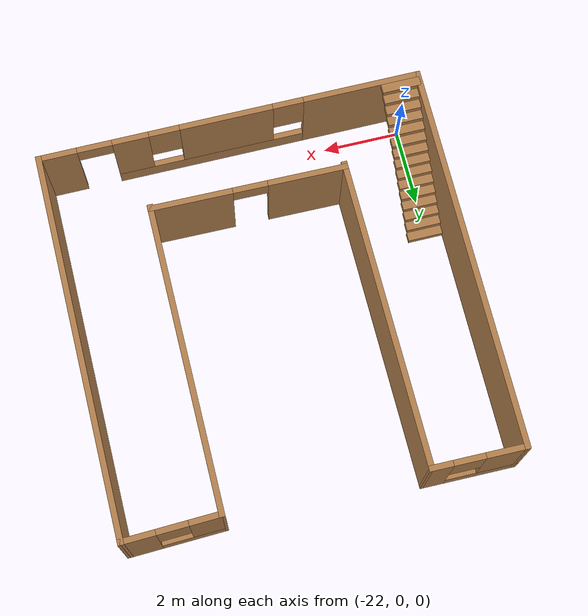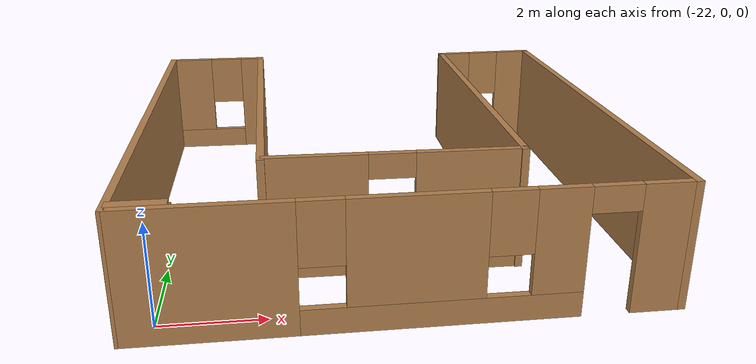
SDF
<?xml version='1.0'?>
<sdf version='1.6'>
  <model name='mybuilding'>
    <pose frame=''>-17.5786 4.43794 0 0 -0 0</pose>
    <link name='Stairs_0'>
      <visual name='Stairs_0_Visual_0'>
        <pose frame=''>-4.43073 -1.49974 0.083333 0 -0 0</pose>
        <geometry>
          <box>
            <size>1 0.233333 0.166667</size>
          </box>
        </geometry>
        <material>
          <script>
            <uri>file://media/materials/scripts/gazebo.material</uri>
            <name>Gazebo/Wood</name>
          </script>
          <ambient>1 1 1 1</ambient>
        </material>
        <meta>
          <layer>0</layer>
        </meta>
      </visual>
      <collision name='Stairs_0_Collision_0'>
        <geometry>
          <box>
            <size>1 0.233333 0.166667</size>
          </box>
        </geometry>
        <pose frame=''>-4.43073 -1.49974 0.083333 0 -0 0</pose>
      </collision>
      <visual name='Stairs_0_Visual_1'>
        <pose frame=''>-4.43073 -1.73307 0.25 0 -0 0</pose>
        <geometry>
          <box>
            <size>1 0.233333 0.166667</size>
          </box>
        </geometry>
        <material>
          <script>
            <uri>file://media/materials/scripts/gazebo.material</uri>
            <name>Gazebo/Wood</name>
          </script>
          <ambient>1 1 1 1</ambient>
        </material>
        <meta>
          <layer>0</layer>
        </meta>
      </visual>
      <collision name='Stairs_0_Collision_1'>
        <geometry>
          <box>
            <size>1 0.233333 0.166667</size>
          </box>
        </geometry>
        <pose frame=''>-4.43073 -1.73307 0.25 0 -0 0</pose>
      </collision>
      <visual name='Stairs_0_Visual_2'>
        <pose frame=''>-4.43073 -1.9664 0.416667 0 -0 0</pose>
        <geometry>
          <box>
            <size>1 0.233333 0.166667</size>
          </box>
        </geometry>
        <material>
          <script>
            <uri>file://media/materials/scripts/gazebo.material</uri>
            <name>Gazebo/Wood</name>
          </script>
          <ambient>1 1 1 1</ambient>
        </material>
        <meta>
          <layer>0</layer>
        </meta>
      </visual>
      <collision name='Stairs_0_Collision_2'>
        <geometry>
          <box>
            <size>1 0.233333 0.166667</size>
          </box>
        </geometry>
        <pose frame=''>-4.43073 -1.9664 0.416667 0 -0 0</pose>
      </collision>
      <visual name='Stairs_0_Visual_3'>
        <pose frame=''>-4.43073 -2.19974 0.583333 0 -0 0</pose>
        <geometry>
          <box>
            <size>1 0.233333 0.166667</size>
          </box>
        </geometry>
        <material>
          <script>
            <uri>file://media/materials/scripts/gazebo.material</uri>
            <name>Gazebo/Wood</name>
          </script>
          <ambient>1 1 1 1</ambient>
        </material>
        <meta>
          <layer>0</layer>
        </meta>
      </visual>
      <collision name='Stairs_0_Collision_3'>
        <geometry>
          <box>
            <size>1 0.233333 0.166667</size>
          </box>
        </geometry>
        <pose frame=''>-4.43073 -2.19974 0.583333 0 -0 0</pose>
      </collision>
      <visual name='Stairs_0_Visual_4'>
        <pose frame=''>-4.43073 -2.43307 0.75 0 -0 0</pose>
        <geometry>
          <box>
            <size>1 0.233333 0.166667</size>
          </box>
        </geometry>
        <material>
          <script>
            <uri>file://media/materials/scripts/gazebo.material</uri>
            <name>Gazebo/Wood</name>
          </script>
          <ambient>1 1 1 1</ambient>
        </material>
        <meta>
          <layer>0</layer>
        </meta>
      </visual>
      <collision name='Stairs_0_Collision_4'>
        <geometry>
          <box>
            <size>1 0.233333 0.166667</size>
          </box>
        </geometry>
        <pose frame=''>-4.43073 -2.43307 0.75 0 -0 0</pose>
      </collision>
      <visual name='Stairs_0_Visual_5'>
        <pose frame=''>-4.43073 -2.6664 0.916667 0 -0 0</pose>
        <geometry>
          <box>
            <size>1 0.233333 0.166667</size>
          </box>
        </geometry>
        <material>
          <script>
            <uri>file://media/materials/scripts/gazebo.material</uri>
            <name>Gazebo/Wood</name>
          </script>
          <ambient>1 1 1 1</ambient>
        </material>
        <meta>
          <layer>0</layer>
        </meta>
      </visual>
      <collision name='Stairs_0_Collision_5'>
        <geometry>
          <box>
            <size>1 0.233333 0.166667</size>
          </box>
        </geometry>
        <pose frame=''>-4.43073 -2.6664 0.916667 0 -0 0</pose>
      </collision>
      <visual name='Stairs_0_Visual_6'>
        <pose frame=''>-4.43073 -2.89974 1.08333 0 -0 0</pose>
        <geometry>
          <box>
            <size>1 0.233333 0.166667</size>
          </box>
        </geometry>
        <material>
          <script>
            <uri>file://media/materials/scripts/gazebo.material</uri>
            <name>Gazebo/Wood</name>
          </script>
          <ambient>1 1 1 1</ambient>
        </material>
        <meta>
          <layer>0</layer>
        </meta>
      </visual>
      <collision name='Stairs_0_Collision_6'>
        <geometry>
          <box>
            <size>1 0.233333 0.166667</size>
          </box>
        </geometry>
        <pose frame=''>-4.43073 -2.89974 1.08333 0 -0 0</pose>
      </collision>
      <visual name='Stairs_0_Visual_7'>
        <pose frame=''>-4.43073 -3.13307 1.25 0 -0 0</pose>
        <geometry>
          <box>
            <size>1 0.233333 0.166667</size>
          </box>
        </geometry>
        <material>
          <script>
            <uri>file://media/materials/scripts/gazebo.material</uri>
            <name>Gazebo/Wood</name>
          </script>
          <ambient>1 1 1 1</ambient>
        </material>
        <meta>
          <layer>0</layer>
        </meta>
      </visual>
      <collision name='Stairs_0_Collision_7'>
        <geometry>
          <box>
            <size>1 0.233333 0.166667</size>
          </box>
        </geometry>
        <pose frame=''>-4.43073 -3.13307 1.25 0 -0 0</pose>
      </collision>
      <visual name='Stairs_0_Visual_8'>
        <pose frame=''>-4.43073 -3.3664 1.41667 0 -0 0</pose>
        <geometry>
          <box>
            <size>1 0.233333 0.166667</size>
          </box>
        </geometry>
        <material>
          <script>
            <uri>file://media/materials/scripts/gazebo.material</uri>
            <name>Gazebo/Wood</name>
          </script>
          <ambient>1 1 1 1</ambient>
        </material>
        <meta>
          <layer>0</layer>
        </meta>
      </visual>
      <collision name='Stairs_0_Collision_8'>
        <geometry>
          <box>
            <size>1 0.233333 0.166667</size>
          </box>
        </geometry>
        <pose frame=''>-4.43073 -3.3664 1.41667 0 -0 0</pose>
      </collision>
      <visual name='Stairs_0_Visual_9'>
        <pose frame=''>-4.43073 -3.59974 1.58333 0 -0 0</pose>
        <geometry>
          <box>
            <size>1 0.233333 0.166667</size>
          </box>
        </geometry>
        <material>
          <script>
            <uri>file://media/materials/scripts/gazebo.material</uri>
            <name>Gazebo/Wood</name>
          </script>
          <ambient>1 1 1 1</ambient>
        </material>
        <meta>
          <layer>0</layer>
        </meta>
      </visual>
      <collision name='Stairs_0_Collision_9'>
        <geometry>
          <box>
            <size>1 0.233333 0.166667</size>
          </box>
        </geometry>
        <pose frame=''>-4.43073 -3.59974 1.58333 0 -0 0</pose>
      </collision>
      <visual name='Stairs_0_Visual_10'>
        <pose frame=''>-4.43073 -3.83307 1.75 0 -0 0</pose>
        <geometry>
          <box>
            <size>1 0.233333 0.166667</size>
          </box>
        </geometry>
        <material>
          <script>
            <uri>file://media/materials/scripts/gazebo.material</uri>
            <name>Gazebo/Wood</name>
          </script>
          <ambient>1 1 1 1</ambient>
        </material>
        <meta>
          <layer>0</layer>
        </meta>
      </visual>
      <collision name='Stairs_0_Collision_10'>
        <geometry>
          <box>
            <size>1 0.233333 0.166667</size>
          </box>
        </geometry>
        <pose frame=''>-4.43073 -3.83307 1.75 0 -0 0</pose>
      </collision>
      <visual name='Stairs_0_Visual_11'>
        <pose frame=''>-4.43073 -4.0664 1.91667 0 -0 0</pose>
        <geometry>
          <box>
            <size>1 0.233333 0.166667</size>
          </box>
        </geometry>
        <material>
          <script>
            <uri>file://media/materials/scripts/gazebo.material</uri>
            <name>Gazebo/Wood</name>
          </script>
          <ambient>1 1 1 1</ambient>
        </material>
        <meta>
          <layer>0</layer>
        </meta>
      </visual>
      <collision name='Stairs_0_Collision_11'>
        <geometry>
          <box>
            <size>1 0.233333 0.166667</size>
          </box>
        </geometry>
        <pose frame=''>-4.43073 -4.0664 1.91667 0 -0 0</pose>
      </collision>
      <visual name='Stairs_0_Visual_12'>
        <pose frame=''>-4.43073 -4.29974 2.08333 0 -0 0</pose>
        <geometry>
          <box>
            <size>1 0.233333 0.166667</size>
          </box>
        </geometry>
        <material>
          <script>
            <uri>file://media/materials/scripts/gazebo.material</uri>
            <name>Gazebo/Wood</name>
          </script>
          <ambient>1 1 1 1</ambient>
        </material>
        <meta>
          <layer>0</layer>
        </meta>
      </visual>
      <collision name='Stairs_0_Collision_12'>
        <geometry>
          <box>
            <size>1 0.233333 0.166667</size>
          </box>
        </geometry>
        <pose frame=''>-4.43073 -4.29974 2.08333 0 -0 0</pose>
      </collision>
      <visual name='Stairs_0_Visual_13'>
        <pose frame=''>-4.43073 -4.53307 2.25 0 -0 0</pose>
        <geometry>
          <box>
            <size>1 0.233333 0.166667</size>
          </box>
        </geometry>
        <material>
          <script>
            <uri>file://media/materials/scripts/gazebo.material</uri>
            <name>Gazebo/Wood</name>
          </script>
          <ambient>1 1 1 1</ambient>
        </material>
        <meta>
          <layer>0</layer>
        </meta>
      </visual>
      <collision name='Stairs_0_Collision_13'>
        <geometry>
          <box>
            <size>1 0.233333 0.166667</size>
          </box>
        </geometry>
        <pose frame=''>-4.43073 -4.53307 2.25 0 -0 0</pose>
      </collision>
      <visual name='Stairs_0_Visual_14'>
        <pose frame=''>-4.43073 -4.7664 2.41667 0 -0 0</pose>
        <geometry>
          <box>
            <size>1 0.233333 0.166667</size>
          </box>
        </geometry>
        <material>
          <script>
            <uri>file://media/materials/scripts/gazebo.material</uri>
            <name>Gazebo/Wood</name>
          </script>
          <ambient>1 1 1 1</ambient>
        </material>
        <meta>
          <layer>0</layer>
        </meta>
      </visual>
      <collision name='Stairs_0_Collision_14'>
        <geometry>
          <box>
            <size>1 0.233333 0.166667</size>
          </box>
        </geometry>
        <pose frame=''>-4.43073 -4.7664 2.41667 0 -0 0</pose>
      </collision>
    </link>
    <link name='Wall_1'>
      <collision name='Wall_1_Collision'>
        <geometry>
          <box>
            <size>10.061 0.15 2.5</size>
          </box>
        </geometry>
        <pose frame=''>0 0 1.25 0 -0 0</pose>
      </collision>
      <visual name='Wall_1_Visual'>
        <pose frame=''>0 0 1.25 0 -0 0</pose>
        <geometry>
          <box>
            <size>10.061 0.15 2.5</size>
          </box>
        </geometry>
        <material>
          <script>
            <uri>file://media/materials/scripts/gazebo.material</uri>
            <name>Gazebo/Wood</name>
          </script>
          <ambient>1 1 1 1</ambient>
        </material>
        <meta>
          <layer>0</layer>
        </meta>
      </visual>
      <pose frame=''>-4.9259 -0.000259 0 0 0 -1.56867</pose>
    </link>
    <link name='Wall_2'>
      <pose frame=''>0.009628 -4.95577 0 0 -0 0</pose>
      <visual name='Wall_2_Visual_0'>
        <pose frame=''>-3.46014 0 1.25 0 -0 0</pose>
        <geometry>
          <box>
            <size>3.07972 0.15 2.5</size>
          </box>
        </geometry>
        <material>
          <script>
            <uri>file://media/materials/scripts/gazebo.material</uri>
            <name>Gazebo/Wood</name>
          </script>
          <ambient>1 1 1 1</ambient>
        </material>
        <meta>
          <layer>0</layer>
        </meta>
      </visual>
      <collision name='Wall_2_Collision_0'>
        <geometry>
          <box>
            <size>3.07972 0.15 2.5</size>
          </box>
        </geometry>
        <pose frame=''>-3.46014 0 1.25 0 -0 0</pose>
      </collision>
      <visual name='Wall_2_Visual_1'>
        <pose frame=''>4.47431 0 1.25 0 -0 0</pose>
        <geometry>
          <box>
            <size>1.05139 0.15 2.5</size>
          </box>
        </geometry>
        <material>
          <script>
            <uri>file://media/materials/scripts/gazebo.material</uri>
            <name>Gazebo/Wood</name>
          </script>
          <ambient>1 1 1 1</ambient>
        </material>
        <meta>
          <layer>0</layer>
        </meta>
      </visual>
      <collision name='Wall_2_Collision_1'>
        <geometry>
          <box>
            <size>1.05139 0.15 2.5</size>
          </box>
        </geometry>
        <pose frame=''>4.47431 0 1.25 0 -0 0</pose>
      </collision>
      <visual name='Wall_2_Visual_2'>
        <pose frame=''>0.564165 0 0.25 0 -0 0</pose>
        <geometry>
          <box>
            <size>4.96889 0.15 0.5</size>
          </box>
        </geometry>
        <material>
          <script>
            <uri>file://media/materials/scripts/gazebo.material</uri>
            <name>Gazebo/Wood</name>
          </script>
          <ambient>1 1 1 1</ambient>
        </material>
        <meta>
          <layer>0</layer>
        </meta>
      </visual>
      <collision name='Wall_2_Collision_2'>
        <geometry>
          <box>
            <size>4.96889 0.15 0.5</size>
          </box>
        </geometry>
        <pose frame=''>0.564165 0 0.25 0 -0 0</pose>
      </collision>
      <visual name='Wall_2_Visual_3'>
        <pose frame=''>0.091849 0 1.5 0 -0 0</pose>
        <geometry>
          <box>
            <size>2.42426 0.15 2</size>
          </box>
        </geometry>
        <material>
          <script>
            <uri>file://media/materials/scripts/gazebo.material</uri>
            <name>Gazebo/Wood</name>
          </script>
          <ambient>1 1 1 1</ambient>
        </material>
        <meta>
          <layer>0</layer>
        </meta>
      </visual>
      <collision name='Wall_2_Collision_3'>
        <geometry>
          <box>
            <size>2.42426 0.15 2</size>
          </box>
        </geometry>
        <pose frame=''>0.091849 0 1.5 0 -0 0</pose>
      </collision>
      <visual name='Wall_2_Visual_4'>
        <pose frame=''>2.57629 0 1.5 0 -0 0</pose>
        <geometry>
          <box>
            <size>0.944633 0.15 2</size>
          </box>
        </geometry>
        <material>
          <script>
            <uri>file://media/materials/scripts/gazebo.material</uri>
            <name>Gazebo/Wood</name>
          </script>
          <ambient>1 1 1 1</ambient>
        </material>
        <meta>
          <layer>0</layer>
        </meta>
      </visual>
      <collision name='Wall_2_Collision_4'>
        <geometry>
          <box>
            <size>0.944633 0.15 2</size>
          </box>
        </geometry>
        <pose frame=''>2.57629 0 1.5 0 -0 0</pose>
      </collision>
      <visual name='Wall_2_Visual_5'>
        <pose frame=''>-1.52028 0 1.9 0 -0 0</pose>
        <geometry>
          <box>
            <size>0.8 0.15 1.2</size>
          </box>
        </geometry>
        <material>
          <script>
            <uri>file://media/materials/scripts/gazebo.material</uri>
            <name>Gazebo/Wood</name>
          </script>
          <ambient>1 1 1 1</ambient>
        </material>
        <meta>
          <layer>0</layer>
        </meta>
      </visual>
      <collision name='Wall_2_Collision_5'>
        <geometry>
          <box>
            <size>0.8 0.15 1.2</size>
          </box>
        </geometry>
        <pose frame=''>-1.52028 0 1.9 0 -0 0</pose>
      </collision>
      <visual name='Wall_2_Visual_6'>
        <pose frame=''>1.70398 0 1.9 0 -0 0</pose>
        <geometry>
          <box>
            <size>0.8 0.15 1.2</size>
          </box>
        </geometry>
        <material>
          <script>
            <uri>file://media/materials/scripts/gazebo.material</uri>
            <name>Gazebo/Wood</name>
          </script>
          <ambient>1 1 1 1</ambient>
        </material>
        <meta>
          <layer>0</layer>
        </meta>
      </visual>
      <collision name='Wall_2_Collision_6'>
        <geometry>
          <box>
            <size>0.8 0.15 1.2</size>
          </box>
        </geometry>
        <pose frame=''>1.70398 0 1.9 0 -0 0</pose>
      </collision>
      <visual name='Wall_2_Visual_7'>
        <pose frame=''>3.49861 0 2.25 0 -0 0</pose>
        <geometry>
          <box>
            <size>0.9 0.15 0.5</size>
          </box>
        </geometry>
        <material>
          <script>
            <uri>file://media/materials/scripts/gazebo.material</uri>
            <name>Gazebo/Wood</name>
          </script>
          <ambient>1 1 1 1</ambient>
        </material>
        <meta>
          <layer>0</layer>
        </meta>
      </visual>
      <collision name='Wall_2_Collision_7'>
        <geometry>
          <box>
            <size>0.9 0.15 0.5</size>
          </box>
        </geometry>
        <pose frame=''>3.49861 0 2.25 0 -0 0</pose>
      </collision>
    </link>
    <link name='Wall_3'>
      <collision name='Wall_3_Collision'>
        <geometry>
          <box>
            <size>10 0.15 2.5</size>
          </box>
        </geometry>
        <pose frame=''>0 0 1.25 0 -0 0</pose>
      </collision>
      <visual name='Wall_3_Visual'>
        <pose frame=''>0 0 1.25 0 -0 0</pose>
        <geometry>
          <box>
            <size>10 0.15 2.5</size>
          </box>
        </geometry>
        <material>
          <script>
            <uri>file://media/materials/scripts/gazebo.material</uri>
            <name>Gazebo/Wood</name>
          </script>
          <ambient>1 1 1 1</ambient>
        </material>
        <meta>
          <layer>0</layer>
        </meta>
      </visual>
      <pose frame=''>4.93463 -0.030772 0 0 -0 1.5708</pose>
    </link>
    <link name='Wall_4'>
      <pose frame=''>3.71074 4.85325 0 0 0 -3.10812</pose>
      <visual name='Wall_4_Visual_0'>
        <pose frame=''>-0.838496 0 1.25 0 -0 0</pose>
        <geometry>
          <box>
            <size>0.922163 0.15 2.5</size>
          </box>
        </geometry>
        <material>
          <script>
            <uri>file://media/materials/scripts/gazebo.material</uri>
            <name>Gazebo/Wood</name>
          </script>
          <ambient>1 1 1 1</ambient>
        </material>
        <meta>
          <layer>0</layer>
        </meta>
      </visual>
      <collision name='Wall_4_Collision_0'>
        <geometry>
          <box>
            <size>0.922163 0.15 2.5</size>
          </box>
        </geometry>
        <pose frame=''>-0.838496 0 1.25 0 -0 0</pose>
      </collision>
      <visual name='Wall_4_Visual_1'>
        <pose frame=''>0.461082 0 0.25 0 -0 0</pose>
        <geometry>
          <box>
            <size>1.67699 0.15 0.5</size>
          </box>
        </geometry>
        <material>
          <script>
            <uri>file://media/materials/scripts/gazebo.material</uri>
            <name>Gazebo/Wood</name>
          </script>
          <ambient>1 1 1 1</ambient>
        </material>
        <meta>
          <layer>0</layer>
        </meta>
      </visual>
      <collision name='Wall_4_Collision_1'>
        <geometry>
          <box>
            <size>1.67699 0.15 0.5</size>
          </box>
        </geometry>
        <pose frame=''>0.461082 0 0.25 0 -0 0</pose>
      </collision>
      <visual name='Wall_4_Visual_2'>
        <pose frame=''>0.861082 0 1.5 0 -0 0</pose>
        <geometry>
          <box>
            <size>0.876993 0.15 2</size>
          </box>
        </geometry>
        <material>
          <script>
            <uri>file://media/materials/scripts/gazebo.material</uri>
            <name>Gazebo/Wood</name>
          </script>
          <ambient>1 1 1 1</ambient>
        </material>
        <meta>
          <layer>0</layer>
        </meta>
      </visual>
      <collision name='Wall_4_Collision_2'>
        <geometry>
          <box>
            <size>0.876993 0.15 2</size>
          </box>
        </geometry>
        <pose frame=''>0.861082 0 1.5 0 -0 0</pose>
      </collision>
      <visual name='Wall_4_Visual_3'>
        <pose frame=''>0.022585 0 1.9 0 -0 0</pose>
        <geometry>
          <box>
            <size>0.8 0.15 1.2</size>
          </box>
        </geometry>
        <material>
          <script>
            <uri>file://media/materials/scripts/gazebo.material</uri>
            <name>Gazebo/Wood</name>
          </script>
          <ambient>1 1 1 1</ambient>
        </material>
        <meta>
          <layer>0</layer>
        </meta>
      </visual>
      <collision name='Wall_4_Collision_3'>
        <geometry>
          <box>
            <size>0.8 0.15 1.2</size>
          </box>
        </geometry>
        <pose frame=''>0.022585 0 1.9 0 -0 0</pose>
      </collision>
    </link>
    <link name='Wall_5'>
      <collision name='Wall_5_Collision'>
        <geometry>
          <box>
            <size>8 0.15 2.5</size>
          </box>
        </geometry>
        <pose frame=''>0 0 1.25 0 -0 0</pose>
      </collision>
      <visual name='Wall_5_Visual'>
        <pose frame=''>0 0 1.25 0 -0 0</pose>
        <geometry>
          <box>
            <size>8 0.15 2.5</size>
          </box>
        </geometry>
        <material>
          <script>
            <uri>file://media/materials/scripts/gazebo.material</uri>
            <name>Gazebo/Wood</name>
          </script>
          <ambient>1 1 1 1</ambient>
        </material>
        <meta>
          <layer>0</layer>
        </meta>
      </visual>
      <pose frame=''>2.48684 0.887269 0 0 0 -1.5708</pose>
    </link>
    <link name='Wall_6'>
      <pose frame=''>-0.00421 -2.9769 0 0 -0 3.12938</pose>
      <visual name='Wall_6_Visual_0'>
        <pose frame=''>-1.48365 0 1.25 0 -0 0</pose>
        <geometry>
          <box>
            <size>2.16519 0.15 2.5</size>
          </box>
        </geometry>
        <material>
          <script>
            <uri>file://media/materials/scripts/gazebo.material</uri>
            <name>Gazebo/Wood</name>
          </script>
          <ambient>1 1 1 1</ambient>
        </material>
        <meta>
          <layer>0</layer>
        </meta>
      </visual>
      <collision name='Wall_6_Collision_0'>
        <geometry>
          <box>
            <size>2.16519 0.15 2.5</size>
          </box>
        </geometry>
        <pose frame=''>-1.48365 0 1.25 0 -0 0</pose>
      </collision>
      <visual name='Wall_6_Visual_1'>
        <pose frame=''>1.53259 0 1.25 0 -0 0</pose>
        <geometry>
          <box>
            <size>2.06729 0.15 2.5</size>
          </box>
        </geometry>
        <material>
          <script>
            <uri>file://media/materials/scripts/gazebo.material</uri>
            <name>Gazebo/Wood</name>
          </script>
          <ambient>1 1 1 1</ambient>
        </material>
        <meta>
          <layer>0</layer>
        </meta>
      </visual>
      <collision name='Wall_6_Collision_1'>
        <geometry>
          <box>
            <size>2.06729 0.15 2.5</size>
          </box>
        </geometry>
        <pose frame=''>1.53259 0 1.25 0 -0 0</pose>
      </collision>
      <visual name='Wall_6_Visual_2'>
        <pose frame=''>0.048946 0 2.25 0 -0 0</pose>
        <geometry>
          <box>
            <size>0.9 0.15 0.5</size>
          </box>
        </geometry>
        <material>
          <script>
            <uri>file://media/materials/scripts/gazebo.material</uri>
            <name>Gazebo/Wood</name>
          </script>
          <ambient>1 1 1 1</ambient>
        </material>
        <meta>
          <layer>0</layer>
        </meta>
      </visual>
      <collision name='Wall_6_Collision_2'>
        <geometry>
          <box>
            <size>0.9 0.15 0.5</size>
          </box>
        </geometry>
        <pose frame=''>0.048946 0 2.25 0 -0 0</pose>
      </collision>
    </link>
    <link name='Wall_7'>
      <collision name='Wall_7_Collision'>
        <geometry>
          <box>
            <size>8.09178 0.15 2.5</size>
          </box>
        </geometry>
        <pose frame=''>0 0 1.25 0 -0 0</pose>
      </collision>
      <visual name='Wall_7_Visual'>
        <pose frame=''>0 0 1.25 0 -0 0</pose>
        <geometry>
          <box>
            <size>8.09178 0.15 2.5</size>
          </box>
        </geometry>
        <material>
          <script>
            <uri>file://media/materials/scripts/gazebo.material</uri>
            <name>Gazebo/Wood</name>
          </script>
          <ambient>1 1 1 1</ambient>
        </material>
        <meta>
          <layer>0</layer>
        </meta>
      </visual>
      <pose frame=''>-2.54089 0.963312 0 0 -0 1.58229</pose>
    </link>
    <link name='Wall_8'>
      <pose frame=''>-3.76147 4.9446 0 0 -0 3.13252</pose>
      <visual name='Wall_8_Visual_0'>
        <pose frame=''>-0.945737 0 1.25 0 -0 0</pose>
        <geometry>
          <box>
            <size>0.608525 0.15 2.5</size>
          </box>
        </geometry>
        <material>
          <script>
            <uri>file://media/materials/scripts/gazebo.material</uri>
            <name>Gazebo/Wood</name>
          </script>
          <ambient>1 1 1 1</ambient>
        </material>
        <meta>
          <layer>0</layer>
        </meta>
      </visual>
      <collision name='Wall_8_Collision_0'>
        <geometry>
          <box>
            <size>0.608525 0.15 2.5</size>
          </box>
        </geometry>
        <pose frame=''>-0.945737 0 1.25 0 -0 0</pose>
      </collision>
      <visual name='Wall_8_Visual_1'>
        <pose frame=''>0.304263 0 0.25 0 -0 0</pose>
        <geometry>
          <box>
            <size>1.89148 0.15 0.5</size>
          </box>
        </geometry>
        <material>
          <script>
            <uri>file://media/materials/scripts/gazebo.material</uri>
            <name>Gazebo/Wood</name>
          </script>
          <ambient>1 1 1 1</ambient>
        </material>
        <meta>
          <layer>0</layer>
        </meta>
      </visual>
      <collision name='Wall_8_Collision_1'>
        <geometry>
          <box>
            <size>1.89148 0.15 0.5</size>
          </box>
        </geometry>
        <pose frame=''>0.304263 0 0.25 0 -0 0</pose>
      </collision>
      <visual name='Wall_8_Visual_2'>
        <pose frame=''>0.704263 0 1.5 0 -0 0</pose>
        <geometry>
          <box>
            <size>1.09147 0.15 2</size>
          </box>
        </geometry>
        <material>
          <script>
            <uri>file://media/materials/scripts/gazebo.material</uri>
            <name>Gazebo/Wood</name>
          </script>
          <ambient>1 1 1 1</ambient>
        </material>
        <meta>
          <layer>0</layer>
        </meta>
      </visual>
      <collision name='Wall_8_Collision_2'>
        <geometry>
          <box>
            <size>1.09147 0.15 2</size>
          </box>
        </geometry>
        <pose frame=''>0.704263 0 1.5 0 -0 0</pose>
      </collision>
      <visual name='Wall_8_Visual_3'>
        <pose frame=''>-0.241475 0 1.9 0 -0 0</pose>
        <geometry>
          <box>
            <size>0.8 0.15 1.2</size>
          </box>
        </geometry>
        <material>
          <script>
            <uri>file://media/materials/scripts/gazebo.material</uri>
            <name>Gazebo/Wood</name>
          </script>
          <ambient>1 1 1 1</ambient>
        </material>
        <meta>
          <layer>0</layer>
        </meta>
      </visual>
      <collision name='Wall_8_Collision_3'>
        <geometry>
          <box>
            <size>0.8 0.15 1.2</size>
          </box>
        </geometry>
        <pose frame=''>-0.241475 0 1.9 0 -0 0</pose>
      </collision>
    </link>
    <static>1</static>
  </model>
</sdf>
